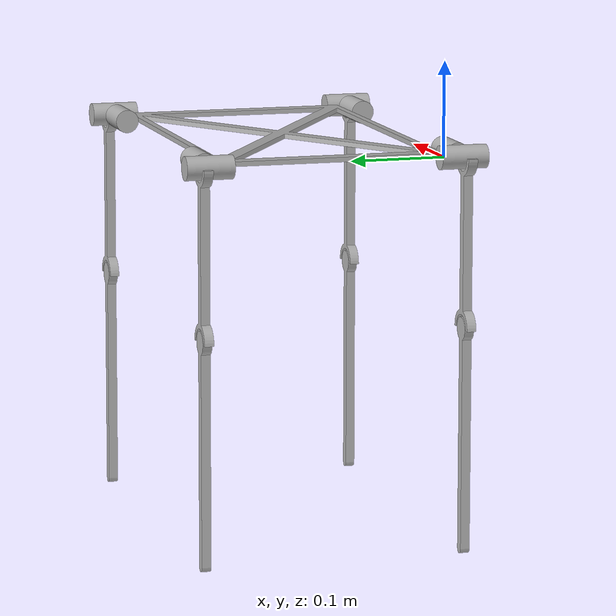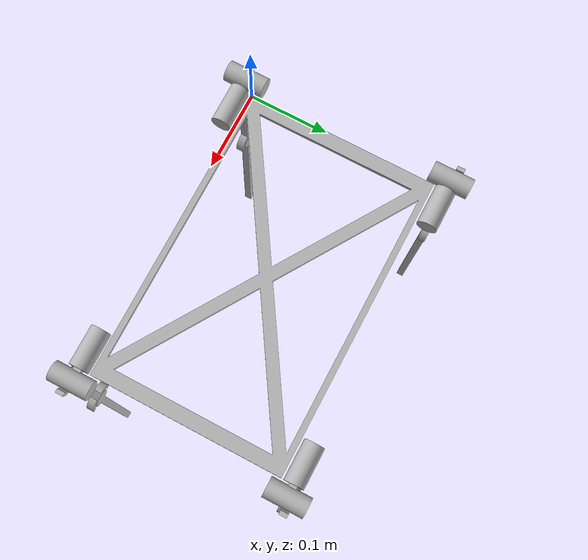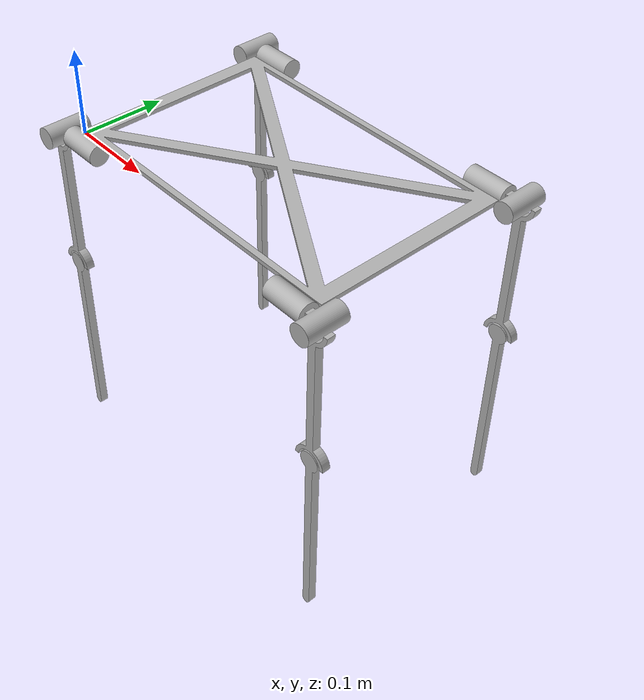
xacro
<?xml version="1.0" ?>
<robot name="FoxTrot" xmlns:xacro="http://www.ros.org/wiki/xacro">

<xacro:include filename="$(find FoxTrot_description)/urdf/materials.xacro" />
<xacro:include filename="$(find FoxTrot_description)/urdf/FoxTrot.trans" />
<xacro:include filename="$(find FoxTrot_description)/urdf/FoxTrot.gazebo" />
<link name="base_link">
  <inertial>
    <origin rpy="0 0 0" xyz="0.19000000000000003 0.12000000000000004 0.0025"/>
    <mass value="0.9972076384399332"/>
    <inertia ixx="0.006145" ixy="0.0" ixz="0.0" iyy="0.017535" iyz="-0.0" izz="0.023676"/>
  </inertial>
  <visual>
    <origin rpy="0 0 0" xyz="0 0 0"/>
    <geometry>
      <mesh filename="package://FoxTrot_description/meshes/base_link.stl" scale="0.001 0.001 0.001"/>
    </geometry>
    <material name="silver"/>
  </visual>
  <collision>
    <origin rpy="0 0 0" xyz="0 0 0"/>
    <geometry>
      <mesh filename="package://FoxTrot_description/meshes/base_link.stl" scale="0.001 0.001 0.001"/>
    </geometry>
  </collision>
</link>

<link name="FL_hip_1">
  <inertial>
    <origin rpy="0 0 0" xyz="0.02500000000000002 -0.015000000000000038 -4.336808689942018e-19"/>
    <mass value="0.19266798695843648"/>
    <inertia ixx="1.5e-05" ixy="0.0" ixz="0.0" iyy="4.8e-05" iyz="0.0" izz="4.8e-05"/>
  </inertial>
  <visual>
    <origin rpy="0 0 0" xyz="-0.0 -0.0 -0.0025"/>
    <geometry>
      <mesh filename="package://FoxTrot_description/meshes/FL_hip_1.stl" scale="0.001 0.001 0.001"/>
    </geometry>
    <material name="silver"/>
  </visual>
  <collision>
    <origin rpy="0 0 0" xyz="-0.0 -0.0 -0.0025"/>
    <geometry>
      <mesh filename="package://FoxTrot_description/meshes/FL_hip_1.stl" scale="0.001 0.001 0.001"/>
    </geometry>
  </collision>
</link>

<link name="FL_motor_1">
  <inertial>
    <origin rpy="0 0 0" xyz="-0.014844764540750217 8.673617379884035e-18 3.469446951953614e-18"/>
    <mass value="0.19489882324271462"/>
    <inertia ixx="4.8e-05" ixy="0.0" ixz="0.0" iyy="1.5e-05" iyz="-0.0" izz="4.8e-05"/>
  </inertial>
  <visual>
    <origin rpy="0 0 0" xyz="0.0 0.015 -0.0025"/>
    <geometry>
      <mesh filename="package://FoxTrot_description/meshes/FL_motor_1.stl" scale="0.001 0.001 0.001"/>
    </geometry>
    <material name="silver"/>
  </visual>
  <collision>
    <origin rpy="0 0 0" xyz="0.0 0.015 -0.0025"/>
    <geometry>
      <mesh filename="package://FoxTrot_description/meshes/FL_motor_1.stl" scale="0.001 0.001 0.001"/>
    </geometry>
  </collision>
</link>

<link name="FL_thigh_1">
  <inertial>
    <origin rpy="0 0 0" xyz="6.591949208711867e-16 -0.004999999999999966 -0.09000000000000098"/>
    <mass value="0.15338784942190076"/>
    <inertia ixx="0.000452" ixy="-0.0" ixz="0.0" iyy="0.000458" iyz="-0.0" izz="9e-06"/>
  </inertial>
  <visual>
    <origin rpy="0 0 0" xyz="0.015 0.015 -0.0025"/>
    <geometry>
      <mesh filename="package://FoxTrot_description/meshes/FL_thigh_1.stl" scale="0.001 0.001 0.001"/>
    </geometry>
    <material name="silver"/>
  </visual>
  <collision>
    <origin rpy="0 0 0" xyz="0.015 0.015 -0.0025"/>
    <geometry>
      <mesh filename="package://FoxTrot_description/meshes/FL_thigh_1.stl" scale="0.001 0.001 0.001"/>
    </geometry>
  </collision>
</link>

<link name="FL_lower_leg_1">
  <inertial>
    <origin rpy="0 0 0" xyz="1.403391292065237e-15 0.005000000000000032 -0.10320492073288678"/>
    <mass value="0.2165471214673015"/>
    <inertia ixx="0.001266" ixy="-0.0" ixz="0.0" iyy="0.001267" iyz="0.0" izz="5e-06"/>
  </inertial>
  <visual>
    <origin rpy="0 0 0" xyz="0.015 0.025 0.1775"/>
    <geometry>
      <mesh filename="package://FoxTrot_description/meshes/FL_lower_leg_1.stl" scale="0.001 0.001 0.001"/>
    </geometry>
    <material name="silver"/>
  </visual>
  <collision>
    <origin rpy="0 0 0" xyz="0.015 0.025 0.1775"/>
    <geometry>
      <mesh filename="package://FoxTrot_description/meshes/FL_lower_leg_1.stl" scale="0.001 0.001 0.001"/>
    </geometry>
  </collision>
</link>

<link name="FR_hip_1">
  <inertial>
    <origin rpy="0 0 0" xyz="0.025000000000000893 0.015000000000000124 -4.336808689942018e-19"/>
    <mass value="0.19266798695843648"/>
    <inertia ixx="1.5e-05" ixy="0.0" ixz="0.0" iyy="4.8e-05" iyz="-0.0" izz="4.8e-05"/>
  </inertial>
  <visual>
    <origin rpy="0 0 0" xyz="-0.0 -0.24 -0.0025"/>
    <geometry>
      <mesh filename="package://FoxTrot_description/meshes/FR_hip_1.stl" scale="0.001 0.001 0.001"/>
    </geometry>
    <material name="silver"/>
  </visual>
  <collision>
    <origin rpy="0 0 0" xyz="-0.0 -0.24 -0.0025"/>
    <geometry>
      <mesh filename="package://FoxTrot_description/meshes/FR_hip_1.stl" scale="0.001 0.001 0.001"/>
    </geometry>
  </collision>
</link>

<link name="FR_motor_1">
  <inertial>
    <origin rpy="0 0 0" xyz="-0.01484476454074934 3.3306690738754696e-16 3.469446951953614e-18"/>
    <mass value="0.19489882324271462"/>
    <inertia ixx="4.8e-05" ixy="-0.0" ixz="0.0" iyy="1.5e-05" iyz="0.0" izz="4.8e-05"/>
  </inertial>
  <visual>
    <origin rpy="0 0 0" xyz="-0.0 -0.255 -0.0025"/>
    <geometry>
      <mesh filename="package://FoxTrot_description/meshes/FR_motor_1.stl" scale="0.001 0.001 0.001"/>
    </geometry>
    <material name="silver"/>
  </visual>
  <collision>
    <origin rpy="0 0 0" xyz="-0.0 -0.255 -0.0025"/>
    <geometry>
      <mesh filename="package://FoxTrot_description/meshes/FR_motor_1.stl" scale="0.001 0.001 0.001"/>
    </geometry>
  </collision>
</link>

<link name="FR_thigh_1">
  <inertial>
    <origin rpy="0 0 0" xyz="1.5716594692349872e-15 0.0050000000000001155 -0.09000000000000093"/>
    <mass value="0.15338784942190076"/>
    <inertia ixx="0.000452" ixy="0.0" ixz="0.0" iyy="0.000458" iyz="0.0" izz="9e-06"/>
  </inertial>
  <visual>
    <origin rpy="0 0 0" xyz="0.015 -0.255 -0.0025"/>
    <geometry>
      <mesh filename="package://FoxTrot_description/meshes/FR_thigh_1.stl" scale="0.001 0.001 0.001"/>
    </geometry>
    <material name="silver"/>
  </visual>
  <collision>
    <origin rpy="0 0 0" xyz="0.015 -0.255 -0.0025"/>
    <geometry>
      <mesh filename="package://FoxTrot_description/meshes/FR_thigh_1.stl" scale="0.001 0.001 0.001"/>
    </geometry>
  </collision>
</link>

<link name="FR_lower_leg_1">
  <inertial>
    <origin rpy="0 0 0" xyz="2.312386393477084e-15 0.0050000000000001155 -0.10320492073288684"/>
    <mass value="0.21654712146730148"/>
    <inertia ixx="0.001266" ixy="0.0" ixz="-0.0" iyy="0.001267" iyz="0.0" izz="5e-06"/>
  </inertial>
  <visual>
    <origin rpy="0 0 0" xyz="0.015 -0.255 0.1775"/>
    <geometry>
      <mesh filename="package://FoxTrot_description/meshes/FR_lower_leg_1.stl" scale="0.001 0.001 0.001"/>
    </geometry>
    <material name="silver"/>
  </visual>
  <collision>
    <origin rpy="0 0 0" xyz="0.015 -0.255 0.1775"/>
    <geometry>
      <mesh filename="package://FoxTrot_description/meshes/FR_lower_leg_1.stl" scale="0.001 0.001 0.001"/>
    </geometry>
  </collision>
</link>

<link name="BL_hip_1">
  <inertial>
    <origin rpy="0 0 0" xyz="-0.025000000000000355 -0.015000000000003462 2.5587171270657905e-17"/>
    <mass value="0.19266798695843648"/>
    <inertia ixx="1.5e-05" ixy="0.0" ixz="0.0" iyy="4.8e-05" iyz="0.0" izz="4.8e-05"/>
  </inertial>
  <visual>
    <origin rpy="0 0 0" xyz="-0.38 0.0 -0.0025"/>
    <geometry>
      <mesh filename="package://FoxTrot_description/meshes/BL_hip_1.stl" scale="0.001 0.001 0.001"/>
    </geometry>
    <material name="silver"/>
  </visual>
  <collision>
    <origin rpy="0 0 0" xyz="-0.38 0.0 -0.0025"/>
    <geometry>
      <mesh filename="package://FoxTrot_description/meshes/BL_hip_1.stl" scale="0.001 0.001 0.001"/>
    </geometry>
  </collision>
</link>

<link name="BL_motor_1">
  <inertial>
    <origin rpy="0 0 0" xyz="0.014844764540749955 -4.246603069191224e-15 3.5561831257524545e-17"/>
    <mass value="0.19489882324271462"/>
    <inertia ixx="4.8e-05" ixy="-0.0" ixz="-0.0" iyy="1.5e-05" iyz="-0.0" izz="4.8e-05"/>
  </inertial>
  <visual>
    <origin rpy="0 0 0" xyz="-0.38 0.015 -0.0025"/>
    <geometry>
      <mesh filename="package://FoxTrot_description/meshes/BL_motor_1.stl" scale="0.001 0.001 0.001"/>
    </geometry>
    <material name="silver"/>
  </visual>
  <collision>
    <origin rpy="0 0 0" xyz="-0.38 0.015 -0.0025"/>
    <geometry>
      <mesh filename="package://FoxTrot_description/meshes/BL_motor_1.stl" scale="0.001 0.001 0.001"/>
    </geometry>
  </collision>
</link>

<link name="BL_thigh_1">
  <inertial>
    <origin rpy="0 0 0" xyz="-1.1102230246251565e-15 -0.005000000000004223 -0.09000000000000088"/>
    <mass value="0.15338784942190076"/>
    <inertia ixx="0.000452" ixy="0.0" ixz="-0.0" iyy="0.000458" iyz="0.0" izz="9e-06"/>
  </inertial>
  <visual>
    <origin rpy="0 0 0" xyz="-0.395 0.015 -0.0025"/>
    <geometry>
      <mesh filename="package://FoxTrot_description/meshes/BL_thigh_1.stl" scale="0.001 0.001 0.001"/>
    </geometry>
    <material name="silver"/>
  </visual>
  <collision>
    <origin rpy="0 0 0" xyz="-0.395 0.015 -0.0025"/>
    <geometry>
      <mesh filename="package://FoxTrot_description/meshes/BL_thigh_1.stl" scale="0.001 0.001 0.001"/>
    </geometry>
  </collision>
</link>

<link name="BL_lower_leg_1">
  <inertial>
    <origin rpy="0 0 0" xyz="-1.7208456881689926e-15 -0.005000000000004223 -0.10320492073288678"/>
    <mass value="0.21654712146730148"/>
    <inertia ixx="0.001266" ixy="-0.0" ixz="0.0" iyy="0.001267" iyz="0.0" izz="5e-06"/>
  </inertial>
  <visual>
    <origin rpy="0 0 0" xyz="-0.395 0.015 0.1775"/>
    <geometry>
      <mesh filename="package://FoxTrot_description/meshes/BL_lower_leg_1.stl" scale="0.001 0.001 0.001"/>
    </geometry>
    <material name="silver"/>
  </visual>
  <collision>
    <origin rpy="0 0 0" xyz="-0.395 0.015 0.1775"/>
    <geometry>
      <mesh filename="package://FoxTrot_description/meshes/BL_lower_leg_1.stl" scale="0.001 0.001 0.001"/>
    </geometry>
  </collision>
</link>

<link name="BR_hip_1">
  <inertial>
    <origin rpy="0 0 0" xyz="-0.024999999999995692 0.014999999999996683 2.5587171270657905e-17"/>
    <mass value="0.19266798695843648"/>
    <inertia ixx="1.5e-05" ixy="0.0" ixz="0.0" iyy="4.8e-05" iyz="0.0" izz="4.8e-05"/>
  </inertial>
  <visual>
    <origin rpy="0 0 0" xyz="-0.38 -0.24 -0.0025"/>
    <geometry>
      <mesh filename="package://FoxTrot_description/meshes/BR_hip_1.stl" scale="0.001 0.001 0.001"/>
    </geometry>
    <material name="silver"/>
  </visual>
  <collision>
    <origin rpy="0 0 0" xyz="-0.38 -0.24 -0.0025"/>
    <geometry>
      <mesh filename="package://FoxTrot_description/meshes/BR_hip_1.stl" scale="0.001 0.001 0.001"/>
    </geometry>
  </collision>
</link>

<link name="BR_motor_1">
  <inertial>
    <origin rpy="0 0 0" xyz="0.014844764540754618 -3.941291737419306e-15 3.5561831257524545e-17"/>
    <mass value="0.19489882324271462"/>
    <inertia ixx="4.8e-05" ixy="0.0" ixz="-0.0" iyy="1.5e-05" iyz="0.0" izz="4.8e-05"/>
  </inertial>
  <visual>
    <origin rpy="0 0 0" xyz="-0.38 -0.255 -0.0025"/>
    <geometry>
      <mesh filename="package://FoxTrot_description/meshes/BR_motor_1.stl" scale="0.001 0.001 0.001"/>
    </geometry>
    <material name="silver"/>
  </visual>
  <collision>
    <origin rpy="0 0 0" xyz="-0.38 -0.255 -0.0025"/>
    <geometry>
      <mesh filename="package://FoxTrot_description/meshes/BR_motor_1.stl" scale="0.001 0.001 0.001"/>
    </geometry>
  </collision>
</link>

<link name="BR_thigh_1">
  <inertial>
    <origin rpy="0 0 0" xyz="3.83026943495679e-15 0.004999999999996008 -0.09000000000000094"/>
    <mass value="0.15338784942190076"/>
    <inertia ixx="0.000452" ixy="0.0" ixz="-0.0" iyy="0.000458" iyz="0.0" izz="9e-06"/>
  </inertial>
  <visual>
    <origin rpy="0 0 0" xyz="-0.395 -0.255 -0.0025"/>
    <geometry>
      <mesh filename="package://FoxTrot_description/meshes/BR_thigh_1.stl" scale="0.001 0.001 0.001"/>
    </geometry>
    <material name="silver"/>
  </visual>
  <collision>
    <origin rpy="0 0 0" xyz="-0.395 -0.255 -0.0025"/>
    <geometry>
      <mesh filename="package://FoxTrot_description/meshes/BR_thigh_1.stl" scale="0.001 0.001 0.001"/>
    </geometry>
  </collision>
</link>

<link name="BR_lower_leg_1">
  <inertial>
    <origin rpy="0 0 0" xyz="3.1086244689504383e-15 -0.005000000000004001 -0.10320492073288678"/>
    <mass value="0.2165471214673015"/>
    <inertia ixx="0.001266" ixy="-0.0" ixz="0.0" iyy="0.001267" iyz="-0.0" izz="5e-06"/>
  </inertial>
  <visual>
    <origin rpy="0 0 0" xyz="-0.395 -0.265 0.1775"/>
    <geometry>
      <mesh filename="package://FoxTrot_description/meshes/BR_lower_leg_1.stl" scale="0.001 0.001 0.001"/>
    </geometry>
    <material name="silver"/>
  </visual>
  <collision>
    <origin rpy="0 0 0" xyz="-0.395 -0.265 0.1775"/>
    <geometry>
      <mesh filename="package://FoxTrot_description/meshes/BR_lower_leg_1.stl" scale="0.001 0.001 0.001"/>
    </geometry>
  </collision>
</link>

<joint name="Rigid1" type="fixed">
  <origin rpy="0 0 0" xyz="0.0 0.0 0.0025"/>
  <parent link="base_link"/>
  <child link="FL_hip_1"/>
</joint>

<joint name="Rev2" type="continuous">
  <origin rpy="0 0 0" xyz="-0.0 -0.015 0.0"/>
  <parent link="FL_hip_1"/>
  <child link="FL_motor_1"/>
  <axis xyz="-1.0 0.0 -0.0"/>
</joint>

<joint name="Rev3" type="continuous">
  <origin rpy="0 0 0" xyz="-0.015 0.0 0.0"/>
  <parent link="FL_motor_1"/>
  <child link="FL_thigh_1"/>
  <axis xyz="0.0 1.0 0.0"/>
</joint>

<joint name="Rev4" type="continuous">
  <origin rpy="0 0 0" xyz="0.0 -0.01 -0.18"/>
  <parent link="FL_thigh_1"/>
  <child link="FL_lower_leg_1"/>
  <axis xyz="-0.0 1.0 0.0"/>
</joint>

<joint name="Rigid5" type="fixed">
  <origin rpy="0 0 0" xyz="0.0 0.24 0.0025"/>
  <parent link="base_link"/>
  <child link="FR_hip_1"/>
</joint>

<joint name="Rev6" type="continuous">
  <origin rpy="0 0 0" xyz="0.0 0.015 0.0"/>
  <parent link="FR_hip_1"/>
  <child link="FR_motor_1"/>
  <axis xyz="-1.0 0.0 -0.0"/>
</joint>

<joint name="Rev7" type="continuous">
  <origin rpy="0 0 0" xyz="-0.015 0.0 0.0"/>
  <parent link="FR_motor_1"/>
  <child link="FR_thigh_1"/>
  <axis xyz="0.0 1.0 -0.0"/>
</joint>

<joint name="Rev8" type="continuous">
  <origin rpy="0 0 0" xyz="0.0 0.0 -0.18"/>
  <parent link="FR_thigh_1"/>
  <child link="FR_lower_leg_1"/>
  <axis xyz="-0.0 -1.0 0.0"/>
</joint>

<joint name="Rigid9" type="fixed">
  <origin rpy="0 0 0" xyz="0.38 0.0 0.0025"/>
  <parent link="base_link"/>
  <child link="BL_hip_1"/>
</joint>

<joint name="Rev10" type="continuous">
  <origin rpy="0 0 0" xyz="0.0 -0.015 0.0"/>
  <parent link="BL_hip_1"/>
  <child link="BL_motor_1"/>
  <axis xyz="1.0 -0.0 0.0"/>
</joint>

<joint name="Rev11" type="continuous">
  <origin rpy="0 0 0" xyz="0.015 0.0 0.0"/>
  <parent link="BL_motor_1"/>
  <child link="BL_thigh_1"/>
  <axis xyz="-0.0 -1.0 -0.0"/>
</joint>

<joint name="Rev12" type="continuous">
  <origin rpy="0 0 0" xyz="0.0 0.0 -0.18"/>
  <parent link="BL_thigh_1"/>
  <child link="BL_lower_leg_1"/>
  <axis xyz="0.0 1.0 0.0"/>
</joint>

<joint name="Rigid13" type="fixed">
  <origin rpy="0 0 0" xyz="0.38 0.24 0.0025"/>
  <parent link="base_link"/>
  <child link="BR_hip_1"/>
</joint>

<joint name="Rev14" type="continuous">
  <origin rpy="0 0 0" xyz="0.0 0.015 0.0"/>
  <parent link="BR_hip_1"/>
  <child link="BR_motor_1"/>
  <axis xyz="-1.0 0.0 -0.0"/>
</joint>

<joint name="Rev15" type="continuous">
  <origin rpy="0 0 0" xyz="0.015 0.0 0.0"/>
  <parent link="BR_motor_1"/>
  <child link="BR_thigh_1"/>
  <axis xyz="-0.0 -1.0 -0.0"/>
</joint>

<joint name="Rev16" type="continuous">
  <origin rpy="0 0 0" xyz="0.0 0.01 -0.18"/>
  <parent link="BR_thigh_1"/>
  <child link="BR_lower_leg_1"/>
  <axis xyz="-0.0 -1.0 -0.0"/>
</joint>

</robot>

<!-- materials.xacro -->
<robot name="FoxTrot" xmlns:xacro="http://www.ros.org/wiki/xacro" >

<material name="silver">
  <color rgba="0.700 0.700 0.700 1.000"/>
</material>

</robot>

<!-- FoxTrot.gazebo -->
<robot name="FoxTrot" xmlns:xacro="http://www.ros.org/wiki/xacro" >

<xacro:property name="body_color" value="Gazebo/Silver" />

<gazebo>
  <plugin filename="libgazebo_ros_control.so" name="control"/>
</gazebo>
<gazebo reference="base_link">
  <material>${body_color}</material>
  <mu1>0.2</mu1>
  <mu2>0.2</mu2>
  <selfCollide>true</selfCollide>
  <gravity>true</gravity>
</gazebo>

<gazebo reference="FL_hip_1">
  <material>${body_color}</material>
  <mu1>0.2</mu1>
  <mu2>0.2</mu2>
  <selfCollide>true</selfCollide>
</gazebo>

<gazebo reference="FL_motor_1">
  <material>${body_color}</material>
  <mu1>0.2</mu1>
  <mu2>0.2</mu2>
  <selfCollide>true</selfCollide>
</gazebo>

<gazebo reference="FL_thigh_1">
  <material>${body_color}</material>
  <mu1>0.2</mu1>
  <mu2>0.2</mu2>
  <selfCollide>true</selfCollide>
</gazebo>

<gazebo reference="FL_lower_leg_1">
  <material>${body_color}</material>
  <mu1>0.2</mu1>
  <mu2>0.2</mu2>
  <selfCollide>true</selfCollide>
</gazebo>

<gazebo reference="FR_hip_1">
  <material>${body_color}</material>
  <mu1>0.2</mu1>
  <mu2>0.2</mu2>
  <selfCollide>true</selfCollide>
</gazebo>

<gazebo reference="FR_motor_1">
  <material>${body_color}</material>
  <mu1>0.2</mu1>
  <mu2>0.2</mu2>
  <selfCollide>true</selfCollide>
</gazebo>

<gazebo reference="FR_thigh_1">
  <material>${body_color}</material>
  <mu1>0.2</mu1>
  <mu2>0.2</mu2>
  <selfCollide>true</selfCollide>
</gazebo>

<gazebo reference="FR_lower_leg_1">
  <material>${body_color}</material>
  <mu1>0.2</mu1>
  <mu2>0.2</mu2>
  <selfCollide>true</selfCollide>
</gazebo>

<gazebo reference="BL_hip_1">
  <material>${body_color}</material>
  <mu1>0.2</mu1>
  <mu2>0.2</mu2>
  <selfCollide>true</selfCollide>
</gazebo>

<gazebo reference="BL_motor_1">
  <material>${body_color}</material>
  <mu1>0.2</mu1>
  <mu2>0.2</mu2>
  <selfCollide>true</selfCollide>
</gazebo>

<gazebo reference="BL_thigh_1">
  <material>${body_color}</material>
  <mu1>0.2</mu1>
  <mu2>0.2</mu2>
  <selfCollide>true</selfCollide>
</gazebo>

<gazebo reference="BL_lower_leg_1">
  <material>${body_color}</material>
  <mu1>0.2</mu1>
  <mu2>0.2</mu2>
  <selfCollide>true</selfCollide>
</gazebo>

<gazebo reference="BR_hip_1">
  <material>${body_color}</material>
  <mu1>0.2</mu1>
  <mu2>0.2</mu2>
  <selfCollide>true</selfCollide>
</gazebo>

<gazebo reference="BR_motor_1">
  <material>${body_color}</material>
  <mu1>0.2</mu1>
  <mu2>0.2</mu2>
  <selfCollide>true</selfCollide>
</gazebo>

<gazebo reference="BR_thigh_1">
  <material>${body_color}</material>
  <mu1>0.2</mu1>
  <mu2>0.2</mu2>
  <selfCollide>true</selfCollide>
</gazebo>

<gazebo reference="BR_lower_leg_1">
  <material>${body_color}</material>
  <mu1>0.2</mu1>
  <mu2>0.2</mu2>
  <selfCollide>true</selfCollide>
</gazebo>

</robot>
